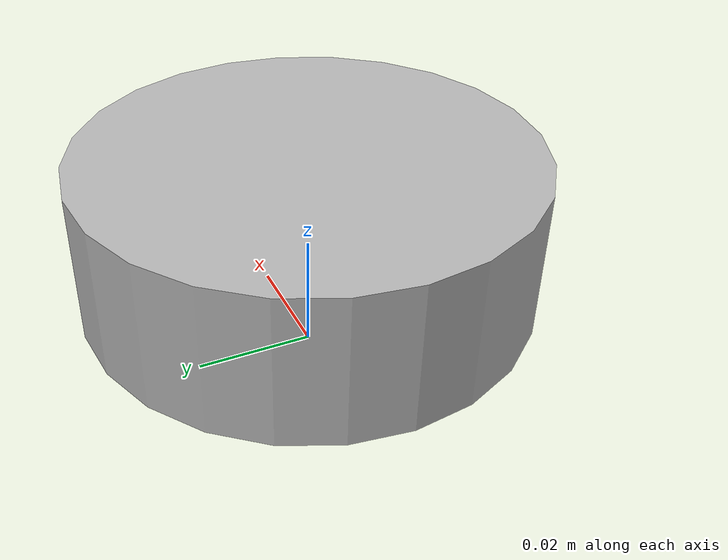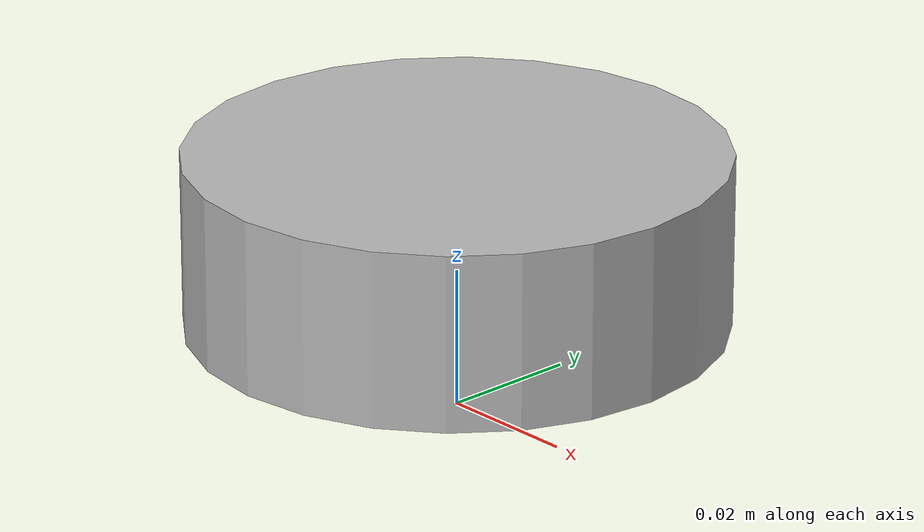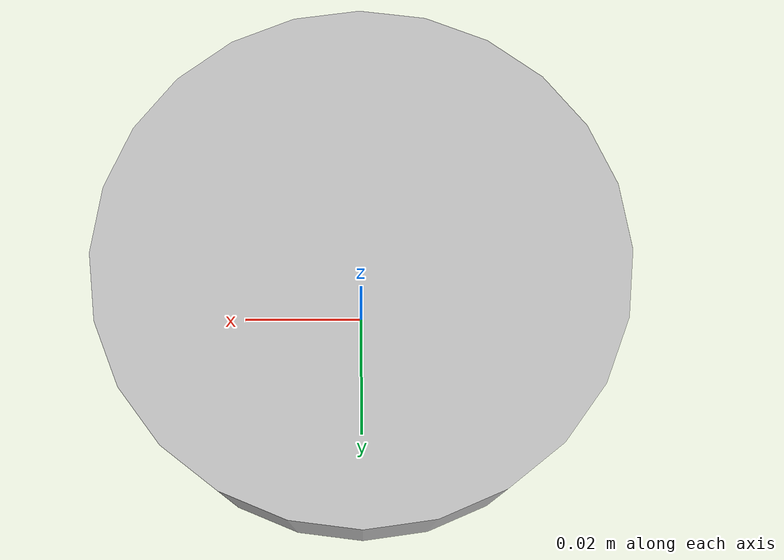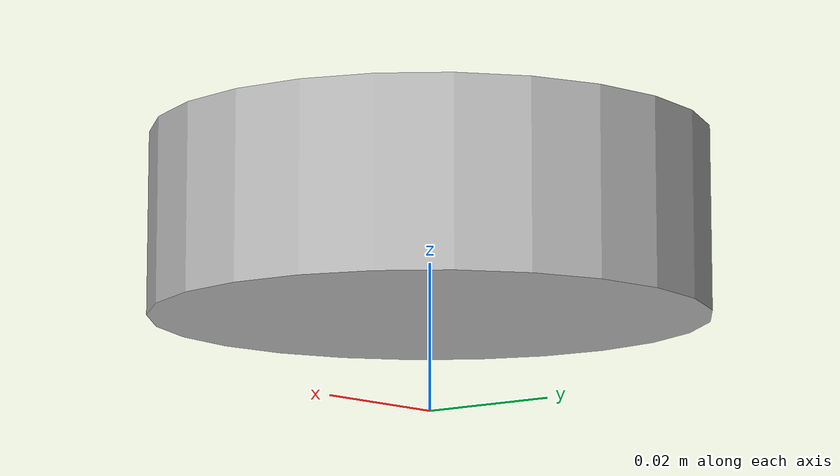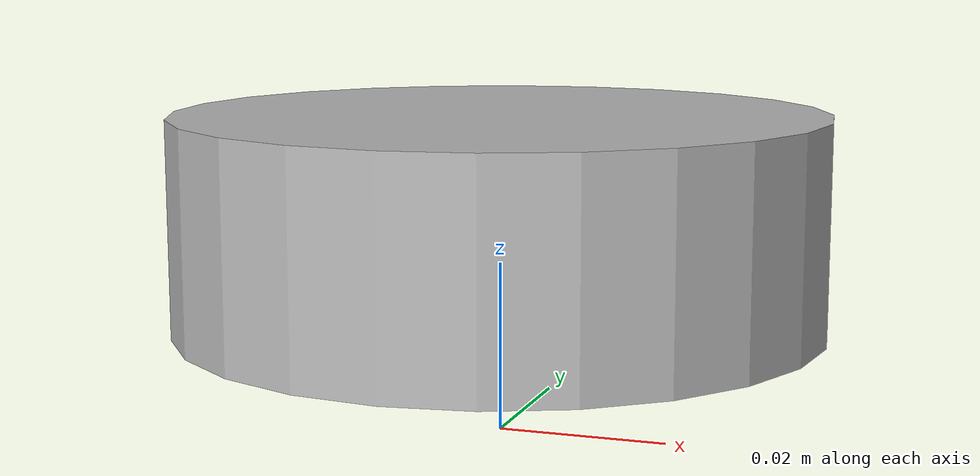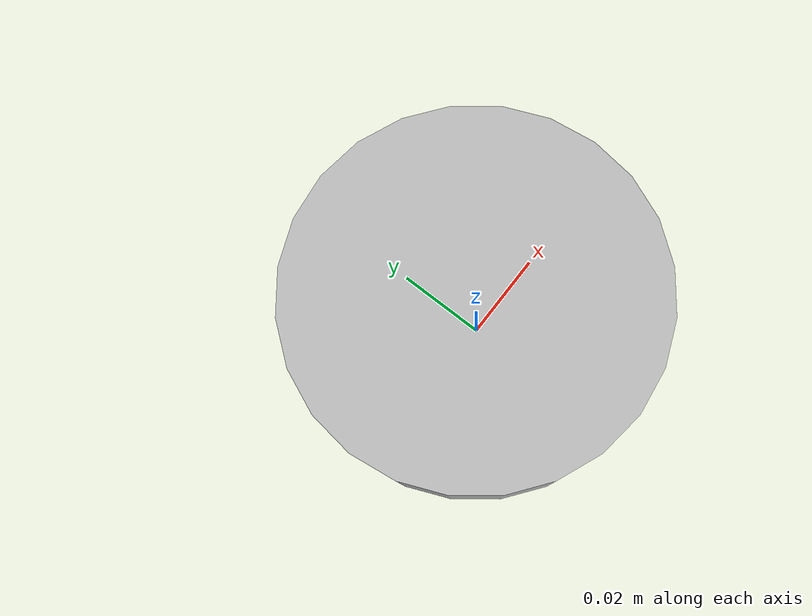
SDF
<?xml version="1.0" ?>
<sdf version="1.6">
  <model name="atom3">
    <link name="link">
      <pose>0 0 0.0125 0 0 0</pose>
      <inertial>
        <pose>0 0 0.0125 0 0 0</pose>
        <mass>0.17</mass>
        <inertia>
          <ixx>0.0005</ixx>
          <ixy>0</ixy>
          <ixz>0</ixz>
          <iyy>0.0005</iyy>
          <iyz>0</iyz>
          <izz>0.0001</izz>
        </inertia>
      </inertial>
      <collision name="collision">
        <geometry>
          <mesh>
            <uri>model://atom3/meshes/atom3.dae</uri>
          </mesh>
        </geometry>
      </collision>
      <visual name="visual">
        <geometry>
          <mesh>
            <uri>model://atom3/meshes/atom3.dae</uri>
          </mesh>
        </geometry>
      </visual>
    </link>
  </model>
</sdf>
